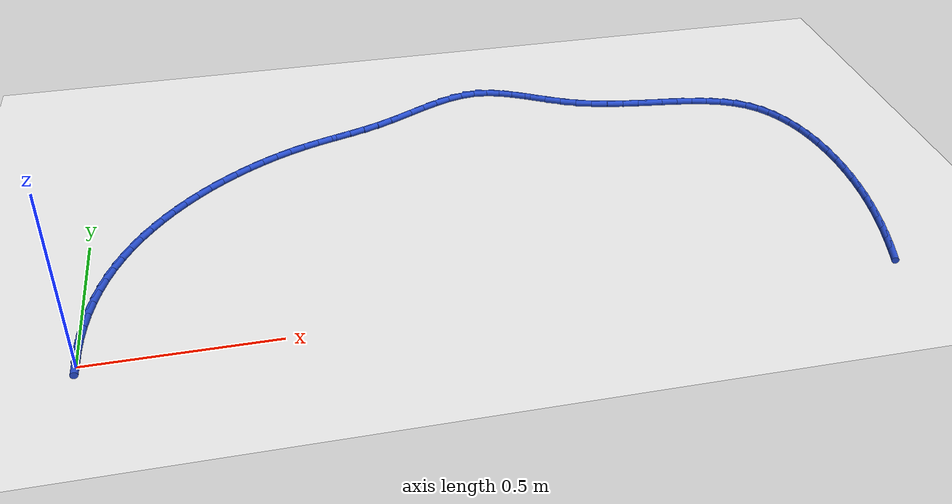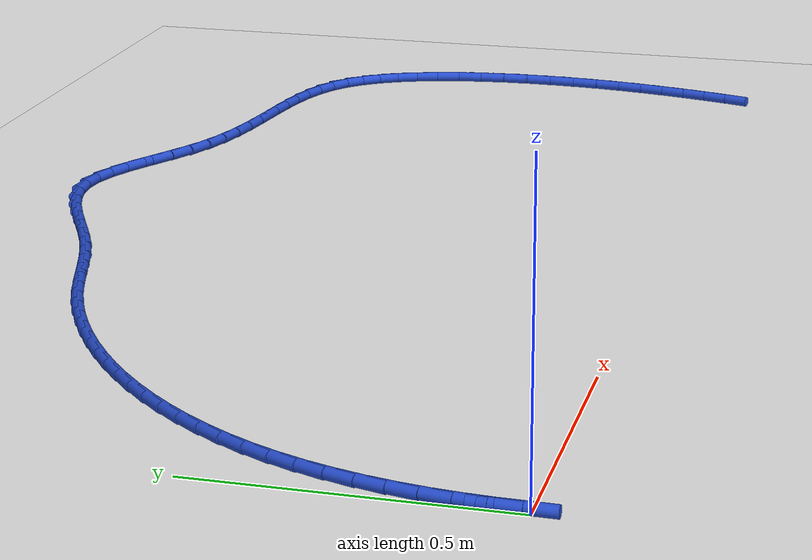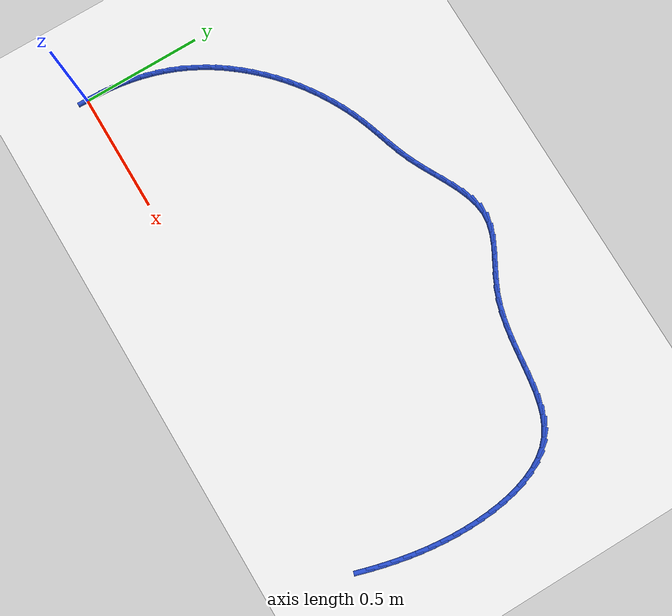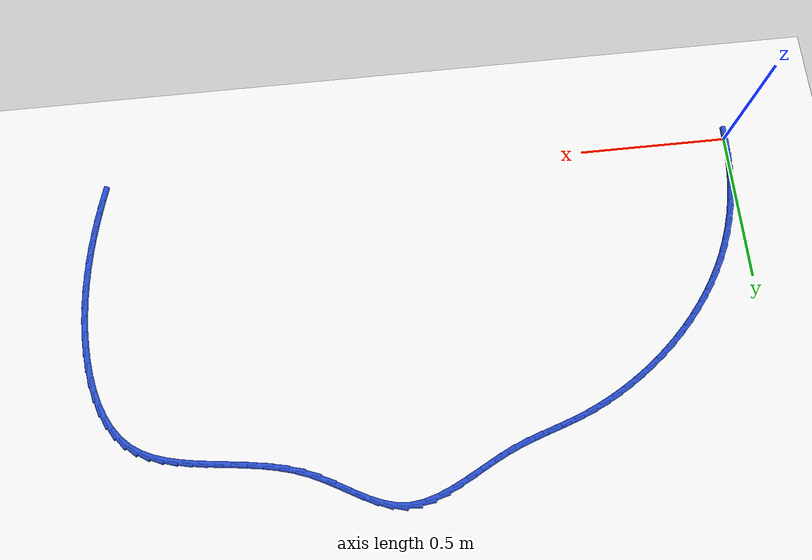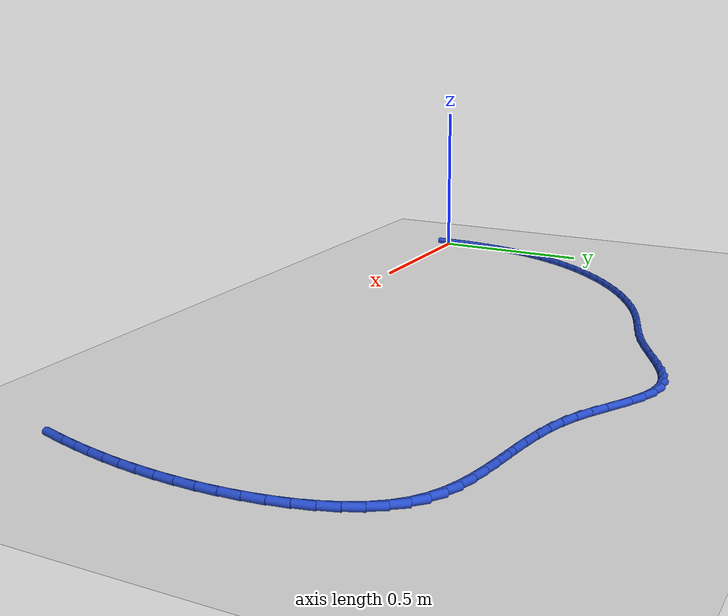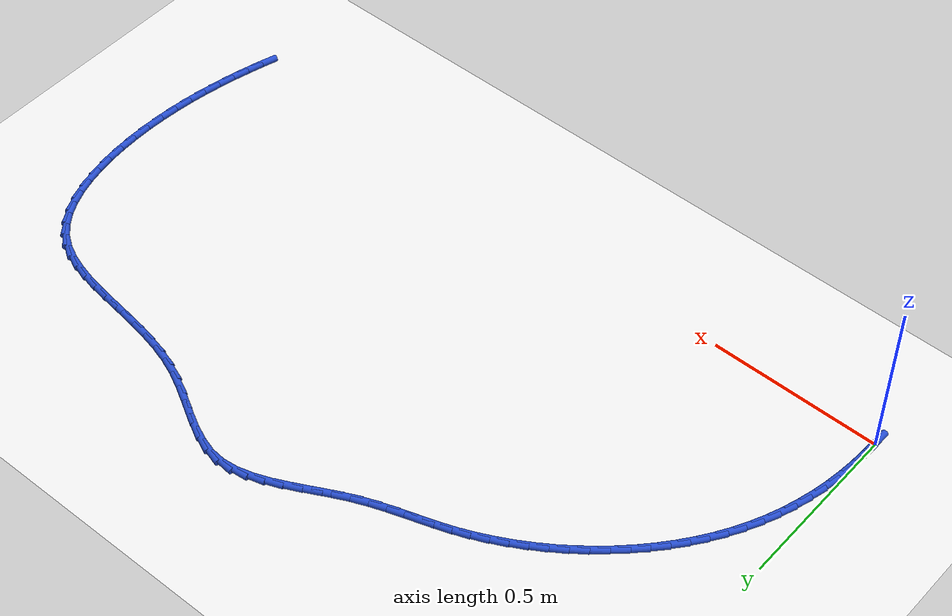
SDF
<sdf version="1.6">
 <world name="default">
  <model name="ground_plane">
   <static>1</static>
   <link name="link">
    <collision name="collision">
     <geometry><plane><normal>0 0 1</normal><size>100 100</size></plane></geometry>
     <surface><friction><ode><mu>100</mu><mu2>50</mu2></ode></friction></surface>
    </collision>
    <visual name="visual">
     <cast_shadows>0</cast_shadows>
     <geometry><plane><normal>0 0 1</normal><size>100 100</size></plane></geometry>
     <material>
      <script><uri>file://media/materials/scripts/gazebo.material</uri><name>Gazebo/WhiteGlow</name></script>
     </material>
    </visual>
   </link>
  </model>
  <model name="line">
   <link name="link_1">
    <pose>0.0009282315727998414 0.04862551055071367 0.01 0 1.57 1.5059344220400541</pose>
    <collision name="collision">
     <geometry><cylinder><radius>0.01</radius><length>0.08</length></cylinder></geometry>
    </collision>
    <visual name="visual">
     <material>
      <script><name>Gazebo/Blue</name><uri>file://media/materials/scripts/gazebo.material</uri></script>
     </material>
     <geometry><cylinder><radius>0.01</radius><length>0.08</length></cylinder></geometry>
    </visual>
   </link>
   <link name="link_2">
    <pose>0.004068738450870917 0.09697594902325075 0.01 0 1.57 1.4585347785168035</pose>
    <collision name="collision">
     <geometry><cylinder><radius>0.01</radius><length>0.08</length></cylinder></geometry>
    </collision>
    <visual name="visual">
     <material>
      <script><name>Gazebo/Blue</name><uri>file://media/materials/scripts/gazebo.material</uri></script>
     </material>
     <geometry><cylinder><radius>0.01</radius><length>0.08</length></cylinder></geometry>
    </visual>
   </link>
   <link name="link_3">
    <pose>0.009477584529107106 0.14495413128332335 0.01 0 1.57 1.4094362277293557</pose>
    <collision name="collision">
     <geometry><cylinder><radius>0.01</radius><length>0.08</length></cylinder></geometry>
    </collision>
    <visual name="visual">
     <material>
      <script><name>Gazebo/Blue</name><uri>file://media/materials/scripts/gazebo.material</uri></script>
     </material>
     <geometry><cylinder><radius>0.01</radius><length>0.08</length></cylinder></geometry>
    </visual>
   </link>
   <link name="link_4">
    <pose>0.017210833702402256 0.19246287319664337 0.01 0 1.57 1.3585893362925034</pose>
    <collision name="collision">
     <geometry><cylinder><radius>0.01</radius><length>0.08</length></cylinder></geometry>
    </collision>
    <visual name="visual">
     <material>
      <script><name>Gazebo/Blue</name><uri>file://media/materials/scripts/gazebo.material</uri></script>
     </material>
     <geometry><cylinder><radius>0.01</radius><length>0.08</length></cylinder></geometry>
    </visual>
   </link>
   <link name="link_5">
    <pose>0.027324549865650204 0.23940499062892273 0.01 0 1.57 1.305975027637463</pose>
    <collision name="collision">
     <geometry><cylinder><radius>0.01</radius><length>0.08</length></cylinder></geometry>
    </collision>
    <visual name="visual">
     <material>
      <script><name>Gazebo/Blue</name><uri>file://media/materials/scripts/gazebo.material</uri></script>
     </material>
     <geometry><cylinder><radius>0.01</radius><length>0.08</length></cylinder></geometry>
    </visual>
   </link>
   <link name="link_6">
    <pose>0.03987479691374483 0.28568329944587356 0.01 0 1.57 1.2516104366016096</pose>
    <collision name="collision">
     <geometry><cylinder><radius>0.01</radius><length>0.08</length></cylinder></geometry>
    </collision>
    <visual name="visual">
     <material>
      <script><name>Gazebo/Blue</name><uri>file://media/materials/scripts/gazebo.material</uri></script>
     </material>
     <geometry><cylinder><radius>0.01</radius><length>0.08</length></cylinder></geometry>
    </visual>
   </link>
   <link name="link_7">
    <pose>0.05491763874157994 0.3312006155132076 0.01 0 1.57 1.1955544581289477</pose>
    <collision name="collision">
     <geometry><cylinder><radius>0.01</radius><length>0.08</length></cylinder></geometry>
    </collision>
    <visual name="visual">
     <material>
      <script><name>Gazebo/Blue</name><uri>file://media/materials/scripts/gazebo.material</uri></script>
     </material>
     <geometry><cylinder><radius>0.01</radius><length>0.08</length></cylinder></geometry>
    </visual>
   </link>
   <link name="link_8">
    <pose>0.07250913924404942 0.375859754696637 0.01 0 1.57 1.13792915806571</pose>
    <collision name="collision">
     <geometry><cylinder><radius>0.01</radius><length>0.08</length></cylinder></geometry>
    </collision>
    <visual name="visual">
     <material>
      <script><name>Gazebo/Blue</name><uri>file://media/materials/scripts/gazebo.material</uri></script>
     </material>
     <geometry><cylinder><radius>0.01</radius><length>0.08</length></cylinder></geometry>
    </visual>
   </link>
   <link name="link_9">
    <pose>0.09270449270493479 0.4195635755722724 0.01 0 1.57 1.0801890849223204</pose>
    <collision name="collision">
     <geometry><cylinder><radius>0.01</radius><length>0.08</length></cylinder></geometry>
    </collision>
    <visual name="visual">
     <material>
      <script><name>Gazebo/Blue</name><uri>file://media/materials/scripts/gazebo.material</uri></script>
     </material>
     <geometry><cylinder><radius>0.01</radius><length>0.08</length></cylinder></geometry>
    </visual>
   </link>
   <link name="link_10">
    <pose>0.11548932728163748 0.4622183534124408 0.01 0 1.57 1.0245530205643905</pose>
    <collision name="collision">
     <geometry><cylinder><radius>0.01</radius><length>0.08</length></cylinder></geometry>
    </collision>
    <visual name="visual">
     <material>
      <script><name>Gazebo/Blue</name><uri>file://media/materials/scripts/gazebo.material</uri></script>
     </material>
     <geometry><cylinder><radius>0.01</radius><length>0.08</length></cylinder></geometry>
    </visual>
   </link>
   <link name="link_11">
    <pose>0.14073004081762283 0.5037362194107877 0.01 0 1.57 0.9710516705400668</pose>
    <collision name="collision">
     <geometry><cylinder><radius>0.01</radius><length>0.08</length></cylinder></geometry>
    </collision>
    <visual name="visual">
     <material>
      <script><name>Gazebo/Blue</name><uri>file://media/materials/scripts/gazebo.material</uri></script>
     </material>
     <geometry><cylinder><radius>0.01</radius><length>0.08</length></cylinder></geometry>
    </visual>
   </link>
   <link name="link_12">
    <pose>0.16828131561240942 0.5440298801624759 0.01 0 1.57 0.9194628288646522</pose>
    <collision name="collision">
     <geometry><cylinder><radius>0.01</radius><length>0.08</length></cylinder></geometry>
    </collision>
    <visual name="visual">
     <material>
      <script><name>Gazebo/Blue</name><uri>file://media/materials/scripts/gazebo.material</uri></script>
     </material>
     <geometry><cylinder><radius>0.01</radius><length>0.08</length></cylinder></geometry>
    </visual>
   </link>
   <link name="link_13">
    <pose>0.1979978339655158 0.5830120422626682 0.01 0 1.57 0.8695460932217859</pose>
    <collision name="collision">
     <geometry><cylinder><radius>0.01</radius><length>0.08</length></cylinder></geometry>
    </collision>
    <visual name="visual">
     <material>
      <script><name>Gazebo/Blue</name><uri>file://media/materials/scripts/gazebo.material</uri></script>
     </material>
     <geometry><cylinder><radius>0.01</radius><length>0.08</length></cylinder></geometry>
    </visual>
   </link>
   <link name="link_14">
    <pose>0.22973427817646047 0.6205954123065273 0.01 0 1.57 0.8210492619521321</pose>
    <collision name="collision">
     <geometry><cylinder><radius>0.01</radius><length>0.08</length></cylinder></geometry>
    </collision>
    <visual name="visual">
     <material>
      <script><name>Gazebo/Blue</name><uri>file://media/materials/scripts/gazebo.material</uri></script>
     </material>
     <geometry><cylinder><radius>0.01</radius><length>0.08</length></cylinder></geometry>
    </visual>
   </link>
   <link name="link_15">
    <pose>0.26334533054476206 0.6566926968892163 0.01 0 1.57 0.7737126452198714</pose>
    <collision name="collision">
     <geometry><cylinder><radius>0.01</radius><length>0.08</length></cylinder></geometry>
    </collision>
    <visual name="visual">
     <material>
      <script><name>Gazebo/Blue</name><uri>file://media/materials/scripts/gazebo.material</uri></script>
     </material>
     <geometry><cylinder><radius>0.01</radius><length>0.08</length></cylinder></geometry>
    </visual>
   </link>
   <link name="link_16">
    <pose>0.298685673369939 0.6912166026058972 0.01 0 1.57 0.7272716430369592</pose>
    <collision name="collision">
     <geometry><cylinder><radius>0.01</radius><length>0.08</length></cylinder></geometry>
    </collision>
    <visual name="visual">
     <material>
      <script><name>Gazebo/Blue</name><uri>file://media/materials/scripts/gazebo.material</uri></script>
     </material>
     <geometry><cylinder><radius>0.01</radius><length>0.08</length></cylinder></geometry>
    </visual>
   </link>
   <link name="link_17">
    <pose>0.33560998895150984 0.7240798360517334 0.01 0 1.57 0.6814579389573997</pose>
    <collision name="collision">
     <geometry><cylinder><radius>0.01</radius><length>0.08</length></cylinder></geometry>
    </collision>
    <visual name="visual">
     <material>
      <script><name>Gazebo/Blue</name><uri>file://media/materials/scripts/gazebo.material</uri></script>
     </material>
     <geometry><cylinder><radius>0.01</radius><length>0.08</length></cylinder></geometry>
    </visual>
   </link>
   <link name="link_18">
    <pose>0.37397295958899335 0.7551951038218877 0.01 0 1.57 0.6359996274307417</pose>
    <collision name="collision">
     <geometry><cylinder><radius>0.01</radius><length>0.08</length></cylinder></geometry>
    </collision>
    <visual name="visual">
     <material>
      <script><name>Gazebo/Blue</name><uri>file://media/materials/scripts/gazebo.material</uri></script>
     </material>
     <geometry><cylinder><radius>0.01</radius><length>0.08</length></cylinder></geometry>
    </visual>
   </link>
   <link name="link_19">
    <pose>0.41362926758190793 0.7844751125115226 0.01 0 1.57 0.5906205551514397</pose>
    <collision name="collision">
     <geometry><cylinder><radius>0.01</radius><length>0.08</length></cylinder></geometry>
    </collision>
    <visual name="visual">
     <material>
      <script><name>Gazebo/Blue</name><uri>file://media/materials/scripts/gazebo.material</uri></script>
     </material>
     <geometry><cylinder><radius>0.01</radius><length>0.08</length></cylinder></geometry>
    </visual>
   </link>
   <link name="link_20">
    <pose>0.45443359522977195 0.8118325687158011 0.01 0 1.57 0.5450391253985567</pose>
    <collision name="collision">
     <geometry><cylinder><radius>0.01</radius><length>0.08</length></cylinder></geometry>
    </collision>
    <visual name="visual">
     <material>
      <script><name>Gazebo/Blue</name><uri>file://media/materials/scripts/gazebo.material</uri></script>
     </material>
     <geometry><cylinder><radius>0.01</radius><length>0.08</length></cylinder></geometry>
    </visual>
   </link>
   <link name="link_21">
    <pose>0.49624062483210446 0.837180179029886 0.01 0 1.57 0.49896679790513515</pose>
    <collision name="collision">
     <geometry><cylinder><radius>0.01</radius><length>0.08</length></cylinder></geometry>
    </collision>
    <visual name="visual">
     <material>
      <script><name>Gazebo/Blue</name><uri>file://media/materials/scripts/gazebo.material</uri></script>
     </material>
     <geometry><cylinder><radius>0.01</radius><length>0.08</length></cylinder></geometry>
    </visual>
   </link>
   <link name="link_22">
    <pose>0.5389050386884234 0.8604306500489398 0.01 0 1.57 0.4521065213377699</pose>
    <collision name="collision">
     <geometry><cylinder><radius>0.01</radius><length>0.08</length></cylinder></geometry>
    </collision>
    <visual name="visual">
     <material>
      <script><name>Gazebo/Blue</name><uri>file://media/materials/scripts/gazebo.material</uri></script>
     </material>
     <geometry><cylinder><radius>0.01</radius><length>0.08</length></cylinder></geometry>
    </visual>
   </link>
   <link name="link_23">
    <pose>0.5822815190982479 0.8814966883681254 0.01 0 1.57 0.4041513661111556</pose>
    <collision name="collision">
     <geometry><cylinder><radius>0.01</radius><length>0.08</length></cylinder></geometry>
    </collision>
    <visual name="visual">
     <material>
      <script><name>Gazebo/Blue</name><uri>file://media/materials/scripts/gazebo.material</uri></script>
     </material>
     <geometry><cylinder><radius>0.01</radius><length>0.08</length></cylinder></geometry>
    </visual>
   </link>
   <link name="link_24">
    <pose>0.6262247483610961 0.9002910005826059 0.01 0 1.57 0.35673341838341655</pose>
    <collision name="collision">
     <geometry><cylinder><radius>0.01</radius><length>0.08</length></cylinder></geometry>
    </collision>
    <visual name="visual">
     <material>
      <script><name>Gazebo/Blue</name><uri>file://media/materials/scripts/gazebo.material</uri></script>
     </material>
     <geometry><cylinder><radius>0.01</radius><length>0.08</length></cylinder></geometry>
    </visual>
   </link>
   <link name="link_25">
    <pose>0.6705960522285797 0.9168272107083539 0.01 0 1.57 0.32435083888574384</pose>
    <collision name="collision">
     <geometry><cylinder><radius>0.01</radius><length>0.08</length></cylinder></geometry>
    </collision>
    <visual name="visual">
     <material>
      <script><name>Gazebo/Blue</name><uri>file://media/materials/scripts/gazebo.material</uri></script>
     </material>
     <geometry><cylinder><radius>0.01</radius><length>0.08</length></cylinder></geometry>
    </visual>
   </link>
   <link name="link_26">
    <pose>0.7153055178400789 0.931859653075764 0.01 0 1.57 0.3141249661949306</pose>
    <collision name="collision">
     <geometry><cylinder><radius>0.01</radius><length>0.08</length></cylinder></geometry>
    </collision>
    <visual name="visual">
     <material>
      <script><name>Gazebo/Blue</name><uri>file://media/materials/scripts/gazebo.material</uri></script>
     </material>
     <geometry><cylinder><radius>0.01</radius><length>0.08</length></cylinder></geometry>
    </visual>
   </link>
   <link name="link_27">
    <pose>0.7602849558181854 0.9464726527890197 0.01 0 1.57 0.3261057442350908</pose>
    <collision name="collision">
     <geometry><cylinder><radius>0.01</radius><length>0.08</length></cylinder></geometry>
    </collision>
    <visual name="visual">
     <material>
      <script><name>Gazebo/Blue</name><uri>file://media/materials/scripts/gazebo.material</uri></script>
     </material>
     <geometry><cylinder><radius>0.01</radius><length>0.08</length></cylinder></geometry>
    </visual>
   </link>
   <link name="link_28">
    <pose>0.8054662764676969 0.9617520491757628 0.01 0 1.57 0.35951464128054117</pose>
    <collision name="collision">
     <geometry><cylinder><radius>0.01</radius><length>0.08</length></cylinder></geometry>
    </collision>
    <visual name="visual">
     <material>
      <script><name>Gazebo/Blue</name><uri>file://media/materials/scripts/gazebo.material</uri></script>
     </material>
     <geometry><cylinder><radius>0.01</radius><length>0.08</length></cylinder></geometry>
    </visual>
   </link>
   <link name="link_29">
    <pose>0.8507813900934104 0.9787836815636339 0.01 0 1.57 0.41233403289446163</pose>
    <collision name="collision">
     <geometry><cylinder><radius>0.01</radius><length>0.08</length></cylinder></geometry>
    </collision>
    <visual name="visual">
     <material>
      <script><name>Gazebo/Blue</name><uri>file://media/materials/scripts/gazebo.material</uri></script>
     </material>
     <geometry><cylinder><radius>0.01</radius><length>0.08</length></cylinder></geometry>
    </visual>
   </link>
   <link name="link_30">
    <pose>0.896162079093217 0.9986336019622885 0.01 0 1.57 0.46344411020995363</pose>
    <collision name="collision">
     <geometry><cylinder><radius>0.01</radius><length>0.08</length></cylinder></geometry>
    </collision>
    <visual name="visual">
     <material>
      <script><name>Gazebo/Blue</name><uri>file://media/materials/scripts/gazebo.material</uri></script>
     </material>
     <geometry><cylinder><radius>0.01</radius><length>0.08</length></cylinder></geometry>
    </visual>
   </link>
   <link name="link_31">
    <pose>0.9415332726181174 1.0213076586699956 0.01 0 1.57 0.4862088964064303</pose>
    <collision name="collision">
     <geometry><cylinder><radius>0.01</radius><length>0.08</length></cylinder></geometry>
    </collision>
    <visual name="visual">
     <material>
      <script><name>Gazebo/Blue</name><uri>file://media/materials/scripts/gazebo.material</uri></script>
     </material>
     <geometry><cylinder><radius>0.01</radius><length>0.08</length></cylinder></geometry>
    </visual>
   </link>
   <link name="link_32">
    <pose>0.9868097243360935 1.0452375432344176 0.01 0 1.57 0.48021782444834926</pose>
    <collision name="collision">
     <geometry><cylinder><radius>0.01</radius><length>0.08</length></cylinder></geometry>
    </collision>
    <visual name="visual">
     <material>
      <script><name>Gazebo/Blue</name><uri>file://media/materials/scripts/gazebo.material</uri></script>
     </material>
     <geometry><cylinder><radius>0.01</radius><length>0.08</length></cylinder></geometry>
    </visual>
   </link>
   <link name="link_33">
    <pose>1.031905362846944 1.0687273083826176 0.01 0 1.57 0.44454053958479745</pose>
    <collision name="collision">
     <geometry><cylinder><radius>0.01</radius><length>0.08</length></cylinder></geometry>
    </collision>
    <visual name="visual">
     <material>
      <script><name>Gazebo/Blue</name><uri>file://media/materials/scripts/gazebo.material</uri></script>
     </material>
     <geometry><cylinder><radius>0.01</radius><length>0.08</length></cylinder></geometry>
    </visual>
   </link>
   <link name="link_34">
    <pose>1.0767341167504672 1.0900810068416598 0.01 0 1.57 0.37528864417723795</pose>
    <collision name="collision">
     <geometry><cylinder><radius>0.01</radius><length>0.08</length></cylinder></geometry>
    </collision>
    <visual name="visual">
     <material>
      <script><name>Gazebo/Blue</name><uri>file://media/materials/scripts/gazebo.material</uri></script>
     </material>
     <geometry><cylinder><radius>0.01</radius><length>0.08</length></cylinder></geometry>
    </visual>
   </link>
   <link name="link_35">
    <pose>1.1212099146464627 1.1076026913386081 0.01 0 1.57 0.2659073901883522</pose>
    <collision name="collision">
     <geometry><cylinder><radius>0.01</radius><length>0.08</length></cylinder></geometry>
    </collision>
    <visual name="visual">
     <material>
      <script><name>Gazebo/Blue</name><uri>file://media/materials/scripts/gazebo.material</uri></script>
     </material>
     <geometry><cylinder><radius>0.01</radius><length>0.08</length></cylinder></geometry>
    </visual>
   </link>
   <link name="link_36">
    <pose>1.1652466851347287 1.1195964146005262 0.01 0 1.57 0.10918553733953469</pose>
    <collision name="collision">
     <geometry><cylinder><radius>0.01</radius><length>0.08</length></cylinder></geometry>
    </collision>
    <visual name="visual">
     <material>
      <script><name>Gazebo/Blue</name><uri>file://media/materials/scripts/gazebo.material</uri></script>
     </material>
     <geometry><cylinder><radius>0.01</radius><length>0.08</length></cylinder></geometry>
    </visual>
   </link>
   <link name="link_37">
    <pose>1.208758356815064 1.1243662293544778 0.01 0 1.57 -0.09324090817124653</pose>
    <collision name="collision">
     <geometry><cylinder><radius>0.01</radius><length>0.08</length></cylinder></geometry>
    </collision>
    <visual name="visual">
     <material>
      <script><name>Gazebo/Blue</name><uri>file://media/materials/scripts/gazebo.material</uri></script>
     </material>
     <geometry><cylinder><radius>0.01</radius><length>0.08</length></cylinder></geometry>
    </visual>
   </link>
   <link name="link_38">
    <pose>1.251675765536862 1.1203529340907725 0.01 0 1.57 -0.28144342441612075</pose>
    <collision name="collision">
     <geometry><cylinder><radius>0.01</radius><length>0.08</length></cylinder></geometry>
    </collision>
    <visual name="visual">
     <material>
      <script><name>Gazebo/Blue</name><uri>file://media/materials/scripts/gazebo.material</uri></script>
     </material>
     <geometry><cylinder><radius>0.01</radius><length>0.08</length></cylinder></geometry>
    </visual>
   </link>
   <link name="link_39">
    <pose>1.2941851132195041 1.1080627269942185 0.01 0 1.57 -0.4099132603606312</pose>
    <collision name="collision">
     <geometry><cylinder><radius>0.01</radius><length>0.08</length></cylinder></geometry>
    </collision>
    <visual name="visual">
     <material>
      <script><name>Gazebo/Blue</name><uri>file://media/materials/scripts/gazebo.material</uri></script>
     </material>
     <geometry><cylinder><radius>0.01</radius><length>0.08</length></cylinder></geometry>
    </visual>
   </link>
   <link name="link_40">
    <pose>1.3366704093119068 1.089601672712271 0.01 0 1.57 -0.48322082847087755</pose>
    <collision name="collision">
     <geometry><cylinder><radius>0.01</radius><length>0.08</length></cylinder></geometry>
    </collision>
    <visual name="visual">
     <material>
      <script><name>Gazebo/Blue</name><uri>file://media/materials/scripts/gazebo.material</uri></script>
     </material>
     <geometry><cylinder><radius>0.01</radius><length>0.08</length></cylinder></geometry>
    </visual>
   </link>
   <link name="link_41">
    <pose>1.379520822895022 1.0671175669744668 0.01 0 1.57 -0.5094529541910356</pose>
    <collision name="collision">
     <geometry><cylinder><radius>0.01</radius><length>0.08</length></cylinder></geometry>
    </collision>
    <visual name="visual">
     <material>
      <script><name>Gazebo/Blue</name><uri>file://media/materials/scripts/gazebo.material</uri></script>
     </material>
     <geometry><cylinder><radius>0.01</radius><length>0.08</length></cylinder></geometry>
    </visual>
   </link>
   <link name="link_42">
    <pose>1.4231255230497994 1.042758205510342 0.01 0 1.57 -0.4937968843412767</pose>
    <collision name="collision">
     <geometry><cylinder><radius>0.01</radius><length>0.08</length></cylinder></geometry>
    </collision>
    <visual name="visual">
     <material>
      <script><name>Gazebo/Blue</name><uri>file://media/materials/scripts/gazebo.material</uri></script>
     </material>
     <geometry><cylinder><radius>0.01</radius><length>0.08</length></cylinder></geometry>
    </visual>
   </link>
   <link name="link_43">
    <pose>1.4678736788571909 1.0186713840494332 0.01 0 1.57 -0.4378469843174447</pose>
    <collision name="collision">
     <geometry><cylinder><radius>0.01</radius><length>0.08</length></cylinder></geometry>
    </collision>
    <visual name="visual">
     <material>
      <script><name>Gazebo/Blue</name><uri>file://media/materials/scripts/gazebo.material</uri></script>
     </material>
     <geometry><cylinder><radius>0.01</radius><length>0.08</length></cylinder></geometry>
    </visual>
   </link>
   <link name="link_44">
    <pose>1.5141544593981466 0.9970048983212765 0.01 0 1.57 -0.34772131931239236</pose>
    <collision name="collision">
     <geometry><cylinder><radius>0.01</radius><length>0.08</length></cylinder></geometry>
    </collision>
    <visual name="visual">
     <material>
      <script><name>Gazebo/Blue</name><uri>file://media/materials/scripts/gazebo.material</uri></script>
     </material>
     <geometry><cylinder><radius>0.01</radius><length>0.08</length></cylinder></geometry>
    </visual>
   </link>
   <link name="link_45">
    <pose>1.5622547275222343 0.9795710364104616 0.01 0 1.57 -0.2635306501707892</pose>
    <collision name="collision">
     <geometry><cylinder><radius>0.01</radius><length>0.08</length></cylinder></geometry>
    </collision>
    <visual name="visual">
     <material>
      <script><name>Gazebo/Blue</name><uri>file://media/materials/scripts/gazebo.material</uri></script>
     </material>
     <geometry><cylinder><radius>0.01</radius><length>0.08</length></cylinder></geometry>
    </visual>
   </link>
   <link name="link_46">
    <pose>1.6118535902458673 0.9661889846567295 0.01 0 1.57 -0.1999344946143437</pose>
    <collision name="collision">
     <geometry><cylinder><radius>0.01</radius><length>0.08</length></cylinder></geometry>
    </collision>
    <visual name="visual">
     <material>
      <script><name>Gazebo/Blue</name><uri>file://media/materials/scripts/gazebo.material</uri></script>
     </material>
     <geometry><cylinder><radius>0.01</radius><length>0.08</length></cylinder></geometry>
    </visual>
   </link>
   <link name="link_47">
    <pose>1.6624066101415789 0.9559448277217211 0.01 0 1.57 -0.15611593324082026</pose>
    <collision name="collision">
     <geometry><cylinder><radius>0.01</radius><length>0.08</length></cylinder></geometry>
    </collision>
    <visual name="visual">
     <material>
      <script><name>Gazebo/Blue</name><uri>file://media/materials/scripts/gazebo.material</uri></script>
     </material>
     <geometry><cylinder><radius>0.01</radius><length>0.08</length></cylinder></geometry>
    </visual>
   </link>
   <link name="link_48">
    <pose>1.7133690034115359 0.9479235143645645 0.01 0 1.57 -0.13132555788795894</pose>
    <collision name="collision">
     <geometry><cylinder><radius>0.01</radius><length>0.08</length></cylinder></geometry>
    </collision>
    <visual name="visual">
     <material>
      <script><name>Gazebo/Blue</name><uri>file://media/materials/scripts/gazebo.material</uri></script>
     </material>
     <geometry><cylinder><radius>0.01</radius><length>0.08</length></cylinder></geometry>
    </visual>
   </link>
   <link name="link_49">
    <pose>1.7641959862579037 0.9412099933443877 0.01 0 1.57 -0.12538433362558804</pose>
    <collision name="collision">
     <geometry><cylinder><radius>0.01</radius><length>0.08</length></cylinder></geometry>
    </collision>
    <visual name="visual">
     <material>
      <script><name>Gazebo/Blue</name><uri>file://media/materials/scripts/gazebo.material</uri></script>
     </material>
     <geometry><cylinder><radius>0.01</radius><length>0.08</length></cylinder></geometry>
    </visual>
   </link>
   <link name="link_50">
    <pose>1.8143427748828516 0.9348892134203192 0.01 0 1.57 -0.13897638585494634</pose>
    <collision name="collision">
     <geometry><cylinder><radius>0.01</radius><length>0.08</length></cylinder></geometry>
    </collision>
    <visual name="visual">
     <material>
      <script><name>Gazebo/Blue</name><uri>file://media/materials/scripts/gazebo.material</uri></script>
     </material>
     <geometry><cylinder><radius>0.01</radius><length>0.08</length></cylinder></geometry>
    </visual>
   </link>
   <link name="link_51">
    <pose>1.8632645854885446 0.9280461233514871 0.01 0 1.57 -0.1738391282583893</pose>
    <collision name="collision">
     <geometry><cylinder><radius>0.01</radius><length>0.08</length></cylinder></geometry>
    </collision>
    <visual name="visual">
     <material>
      <script><name>Gazebo/Blue</name><uri>file://media/materials/scripts/gazebo.material</uri></script>
     </material>
     <geometry><cylinder><radius>0.01</radius><length>0.08</length></cylinder></geometry>
    </visual>
   </link>
   <link name="link_52">
    <pose>1.9104166342771505 0.91976567189702 0.01 0 1.57 -0.23284107659925676</pose>
    <collision name="collision">
     <geometry><cylinder><radius>0.01</radius><length>0.08</length></cylinder></geometry>
    </collision>
    <visual name="visual">
     <material>
      <script><name>Gazebo/Blue</name><uri>file://media/materials/scripts/gazebo.material</uri></script>
     </material>
     <geometry><cylinder><radius>0.01</radius><length>0.08</length></cylinder></geometry>
    </visual>
   </link>
   <link name="link_53">
    <pose>1.9552541374508363 0.9091328078160458 0.01 0 1.57 -0.31976829064523693</pose>
    <collision name="collision">
     <geometry><cylinder><radius>0.01</radius><length>0.08</length></cylinder></geometry>
    </collision>
    <visual name="visual">
     <material>
      <script><name>Gazebo/Blue</name><uri>file://media/materials/scripts/gazebo.material</uri></script>
     </material>
     <geometry><cylinder><radius>0.01</radius><length>0.08</length></cylinder></geometry>
    </visual>
   </link>
   <link name="link_54">
    <pose>1.9972323112117696 0.8952324798676929 0.01 0 1.57 -0.4383631733152013</pose>
    <collision name="collision">
     <geometry><cylinder><radius>0.01</radius><length>0.08</length></cylinder></geometry>
    </collision>
    <visual name="visual">
     <material>
      <script><name>Gazebo/Blue</name><uri>file://media/materials/scripts/gazebo.material</uri></script>
     </material>
     <geometry><cylinder><radius>0.01</radius><length>0.08</length></cylinder></geometry>
    </visual>
   </link>
   <link name="link_55">
    <pose>2.0358063717621153 0.8771496368110895 0.01 0 1.57 -0.5899388915917941</pose>
    <collision name="collision">
     <geometry><cylinder><radius>0.01</radius><length>0.08</length></cylinder></geometry>
    </collision>
    <visual name="visual">
     <material>
      <script><name>Gazebo/Blue</name><uri>file://media/materials/scripts/gazebo.material</uri></script>
     </material>
     <geometry><cylinder><radius>0.01</radius><length>0.08</length></cylinder></geometry>
    </visual>
   </link>
   <link name="link_56">
    <pose>2.0704315353040426 0.853969227405364 0.01 0 1.57 -0.7642307128121009</pose>
    <collision name="collision">
     <geometry><cylinder><radius>0.01</radius><length>0.08</length></cylinder></geometry>
    </collision>
    <visual name="visual">
     <material>
      <script><name>Gazebo/Blue</name><uri>file://media/materials/scripts/gazebo.material</uri></script>
     </material>
     <geometry><cylinder><radius>0.01</radius><length>0.08</length></cylinder></geometry>
    </visual>
   </link>
   <link name="link_57">
    <pose>2.1006666066493054 0.8249878054975908 0.01 0 1.57 -0.9255778618217122</pose>
    <collision name="collision">
     <geometry><cylinder><radius>0.01</radius><length>0.08</length></cylinder></geometry>
    </collision>
    <visual name="visual">
     <material>
      <script><name>Gazebo/Blue</name><uri>file://media/materials/scripts/gazebo.material</uri></script>
     </material>
     <geometry><cylinder><radius>0.01</radius><length>0.08</length></cylinder></geometry>
    </visual>
   </link>
   <link name="link_58">
    <pose>2.126585049465974 0.7905532416093803 0.01 0 1.57 -1.0627380888356026</pose>
    <collision name="collision">
     <geometry><cylinder><radius>0.01</radius><length>0.08</length></cylinder></geometry>
    </collision>
    <visual name="visual">
     <material>
      <script><name>Gazebo/Blue</name><uri>file://media/materials/scripts/gazebo.material</uri></script>
     </material>
     <geometry><cylinder><radius>0.01</radius><length>0.08</length></cylinder></geometry>
    </visual>
   </link>
   <link name="link_59">
    <pose>2.1484198575501425 0.7513392855931439 0.01 0 1.57 -1.1772957390102776</pose>
    <collision name="collision">
     <geometry><cylinder><radius>0.01</radius><length>0.08</length></cylinder></geometry>
    </collision>
    <visual name="visual">
     <material>
      <script><name>Gazebo/Blue</name><uri>file://media/materials/scripts/gazebo.material</uri></script>
     </material>
     <geometry><cylinder><radius>0.01</radius><length>0.08</length></cylinder></geometry>
    </visual>
   </link>
   <link name="link_60">
    <pose>2.166404073175682 0.708019786329008 0.01 0 1.57 -1.2726553511147958</pose>
    <collision name="collision">
     <geometry><cylinder><radius>0.01</radius><length>0.08</length></cylinder></geometry>
    </collision>
    <visual name="visual">
     <material>
      <script><name>Gazebo/Blue</name><uri>file://media/materials/scripts/gazebo.material</uri></script>
     </material>
     <geometry><cylinder><radius>0.01</radius><length>0.08</length></cylinder></geometry>
    </visual>
   </link>
   <link name="link_61">
    <pose>2.180770738616458 0.6612685926970983 0.01 0 1.57 -1.3525095050085383</pose>
    <collision name="collision">
     <geometry><cylinder><radius>0.01</radius><length>0.08</length></cylinder></geometry>
    </collision>
    <visual name="visual">
     <material>
      <script><name>Gazebo/Blue</name><uri>file://media/materials/scripts/gazebo.material</uri></script>
     </material>
     <geometry><cylinder><radius>0.01</radius><length>0.08</length></cylinder></geometry>
    </visual>
   </link>
   <link name="link_62">
    <pose>2.1917528961463426 0.611759553577541 0.01 0 1.57 -1.4201678810788538</pose>
    <collision name="collision">
     <geometry><cylinder><radius>0.01</radius><length>0.08</length></cylinder></geometry>
    </collision>
    <visual name="visual">
     <material>
      <script><name>Gazebo/Blue</name><uri>file://media/materials/scripts/gazebo.material</uri></script>
     </material>
     <geometry><cylinder><radius>0.01</radius><length>0.08</length></cylinder></geometry>
    </visual>
   </link>
   <link name="link_63">
    <pose>2.199583588039202 0.560166517850463 0.01 0 1.57 -1.478381572556269</pose>
    <collision name="collision">
     <geometry><cylinder><radius>0.01</radius><length>0.08</length></cylinder></geometry>
    </collision>
    <visual name="visual">
     <material>
      <script><name>Gazebo/Blue</name><uri>file://media/materials/scripts/gazebo.material</uri></script>
     </material>
     <geometry><cylinder><radius>0.01</radius><length>0.08</length></cylinder></geometry>
    </visual>
   </link>
   <link name="link_64">
    <pose>2.204495856568906 0.5071633343959906 0.01 0 1.57 -1.5293814485798447</pose>
    <collision name="collision">
     <geometry><cylinder><radius>0.01</radius><length>0.08</length></cylinder></geometry>
    </collision>
    <visual name="visual">
     <material>
      <script><name>Gazebo/Blue</name><uri>file://media/materials/scripts/gazebo.material</uri></script>
     </material>
     <geometry><cylinder><radius>0.01</radius><length>0.08</length></cylinder></geometry>
    </visual>
   </link>
   <link name="link_65">
    <pose>2.2067227440093227 0.45342385209424996 0.01 0 1.57 1.5666059558191854</pose>
    <collision name="collision">
     <geometry><cylinder><radius>0.01</radius><length>0.08</length></cylinder></geometry>
    </collision>
    <visual name="visual">
     <material>
      <script><name>Gazebo/Blue</name><uri>file://media/materials/scripts/gazebo.material</uri></script>
     </material>
     <geometry><cylinder><radius>0.01</radius><length>0.08</length></cylinder></geometry>
    </visual>
   </link>
   <link name="link_66">
    <pose>2.206497292634322 0.3996219198253673 0.01 0 1.57 1.5248662973916567</pose>
    <collision name="collision">
     <geometry><cylinder><radius>0.01</radius><length>0.08</length></cylinder></geometry>
    </collision>
    <visual name="visual">
     <material>
      <script><name>Gazebo/Blue</name><uri>file://media/materials/scripts/gazebo.material</uri></script>
     </material>
     <geometry><cylinder><radius>0.01</radius><length>0.08</length></cylinder></geometry>
    </visual>
   </link>
   <link name="link_67">
    <pose>2.2040525129534476 0.346431004685043 0.01 0 1.57 1.485643464621398</pose>
    <collision name="collision">
     <geometry><cylinder><radius>0.01</radius><length>0.08</length></cylinder></geometry>
    </collision>
    <visual name="visual">
     <material>
      <script><name>Gazebo/Blue</name><uri>file://media/materials/scripts/gazebo.material</uri></script>
     </material>
     <geometry><cylinder><radius>0.01</radius><length>0.08</length></cylinder></geometry>
    </visual>
   </link>
   <link name="link_68">
    <pose>2.199605923424909 0.29433837039423727 0.01 0 1.57 1.4484267713915997</pose>
    <collision name="collision">
     <geometry><cylinder><radius>0.01</radius><length>0.08</length></cylinder></geometry>
    </collision>
    <visual name="visual">
     <material>
      <script><name>Gazebo/Blue</name><uri>file://media/materials/scripts/gazebo.material</uri></script>
     </material>
     <geometry><cylinder><radius>0.01</radius><length>0.08</length></cylinder></geometry>
    </visual>
   </link>
   <link name="link_69">
    <pose>2.1933346494123604 0.24334578457300018 0.01 0 1.57 1.413501222588842</pose>
    <collision name="collision">
     <geometry><cylinder><radius>0.01</radius><length>0.08</length></cylinder></geometry>
    </collision>
    <visual name="visual">
     <material>
      <script><name>Gazebo/Blue</name><uri>file://media/materials/scripts/gazebo.material</uri></script>
     </material>
     <geometry><cylinder><radius>0.01</radius><length>0.08</length></cylinder></geometry>
    </visual>
   </link>
   <link name="link_70">
    <pose>2.1854093159407784 0.19337688542049475 0.01 0 1.57 1.3811711624557867</pose>
    <collision name="collision">
     <geometry><cylinder><radius>0.01</radius><length>0.08</length></cylinder></geometry>
    </collision>
    <visual name="visual">
     <material>
      <script><name>Gazebo/Blue</name><uri>file://media/materials/scripts/gazebo.material</uri></script>
     </material>
     <geometry><cylinder><radius>0.01</radius><length>0.08</length></cylinder></geometry>
    </visual>
   </link>
   <link name="link_71">
    <pose>2.176000548035135 0.14435531113588299 0.01 0 1.57 1.3517030758279434</pose>
    <collision name="collision">
     <geometry><cylinder><radius>0.01</radius><length>0.08</length></cylinder></geometry>
    </collision>
    <visual name="visual">
     <material>
      <script><name>Gazebo/Blue</name><uri>file://media/materials/scripts/gazebo.material</uri></script>
     </material>
     <geometry><cylinder><radius>0.01</radius><length>0.08</length></cylinder></geometry>
    </visual>
   </link>
   <link name="link_72">
    <pose>2.1652789707204074 0.0962046999183285 0.01 0 1.57 1.325325647583155</pose>
    <collision name="collision">
     <geometry><cylinder><radius>0.01</radius><length>0.08</length></cylinder></geometry>
    </collision>
    <visual name="visual">
     <material>
      <script><name>Gazebo/Blue</name><uri>file://media/materials/scripts/gazebo.material</uri></script>
     </material>
     <geometry><cylinder><radius>0.01</radius><length>0.08</length></cylinder></geometry>
    </visual>
   </link>
   <link name="link_73">
    <pose>2.1534152090215684 0.0488486899669935 0.01 0 1.57 1.3022320957081772</pose>
    <collision name="collision">
     <geometry><cylinder><radius>0.01</radius><length>0.08</length></cylinder></geometry>
    </collision>
    <visual name="visual">
     <material>
      <script><name>Gazebo/Blue</name><uri>file://media/materials/scripts/gazebo.material</uri></script>
     </material>
     <geometry><cylinder><radius>0.01</radius><length>0.08</length></cylinder></geometry>
    </visual>
   </link>
   <link name="link_74">
    <pose>2.140579887963593 0.00221091948104081 0.01 0 1.57 1.2825841393424466</pose>
    <collision name="collision">
     <geometry><cylinder><radius>0.01</radius><length>0.08</length></cylinder></geometry>
    </collision>
    <visual name="visual">
     <material>
      <script><name>Gazebo/Blue</name><uri>file://media/materials/scripts/gazebo.material</uri></script>
     </material>
     <geometry><cylinder><radius>0.01</radius><length>0.08</length></cylinder></geometry>
    </visual>
   </link>
   <link name="link_150">
    <pose>2.949029909160572e-17 1.5265566588595902e-16 0.01 0 1.57 1.551999129766101</pose>
    <collision name="collision">
     <geometry><cylinder><radius>0.01</radius><length>0.08</length></cylinder></geometry>
    </collision>
    <visual name="visual">
     <material>
      <script><name>Gazebo/Blue</name><uri>file://media/materials/scripts/gazebo.material</uri></script>
     </material>
     <geometry><cylinder><radius>0.01</radius><length>0.08</length></cylinder></geometry>
    </visual>
   </link>
   <link name="link_151">
    <pose>0.0009137467610398509 0.04860507328041485 0.01 0 1.57 1.5519991297661009</pose>
    <collision name="collision">
     <geometry><cylinder><radius>0.01</radius><length>0.08</length></cylinder></geometry>
    </collision>
    <visual name="visual">
     <material>
      <script><name>Gazebo/Blue</name><uri>file://media/materials/scripts/gazebo.material</uri></script>
     </material>
     <geometry><cylinder><radius>0.01</radius><length>0.08</length></cylinder></geometry>
    </visual>
   </link>
  </model>
 </world>
</sdf>
